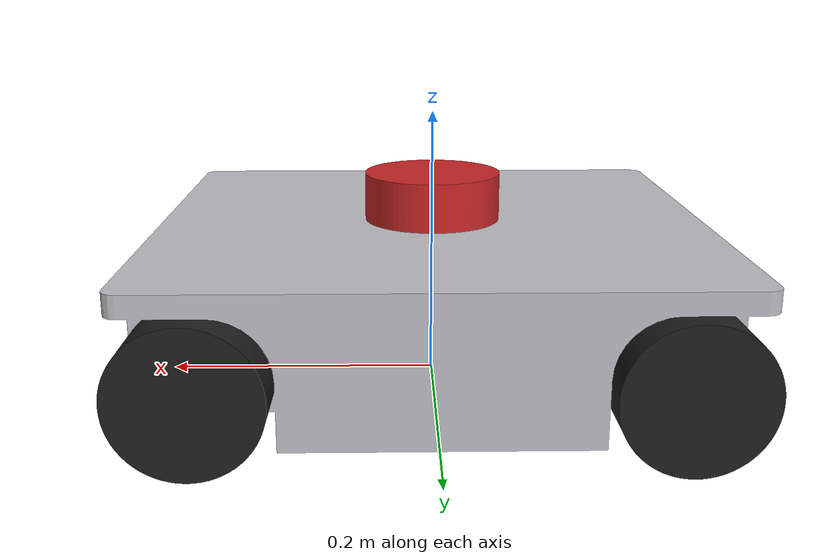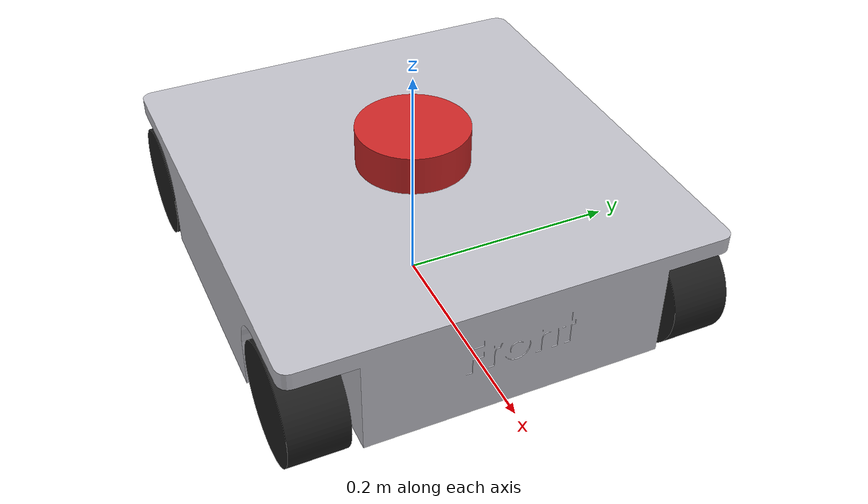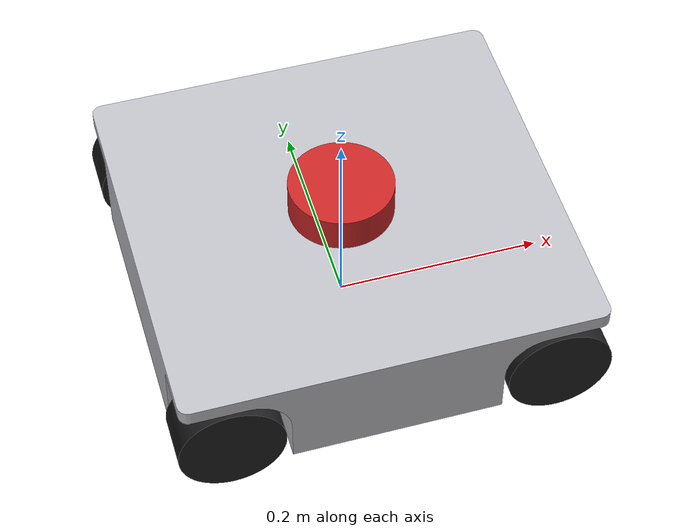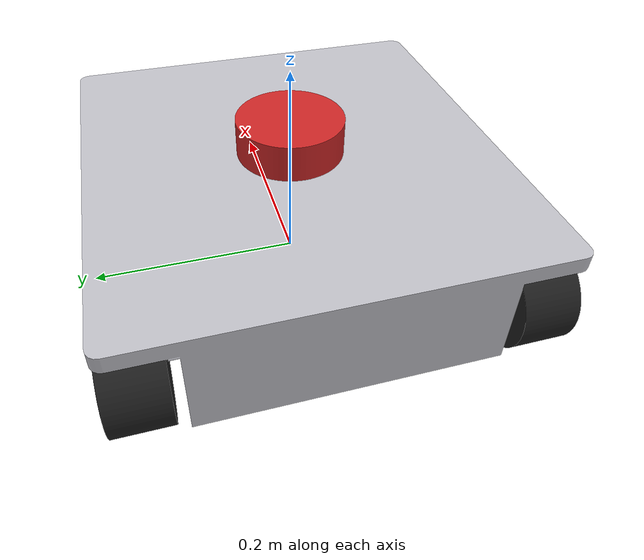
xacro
<?xml version="1.0" ?>
<robot name="robot" xmlns:xacro="http://www.ros.org/wiki/xacro">

<link name="base_footprint">
</link>

<joint name="base_footprint_joint" type="fixed">
  <origin xyz="0.0 0.0 0.0" rpy="0 0 0"/>
  <parent link="base_footprint"/>
  <child link="base_link"/>
</joint>

<link name="base_link">
  <inertial>
    <origin xyz="0 0 0.07117449057392843" rpy="0 0 0"/>
    <mass value="5"/>
    <inertia ixx="1.125875" iyy="1.312695" izz="5" ixy="1e-06" iyz="-0.0" ixz="9e-06"/>
  </inertial>
  <visual>
    <origin xyz="0 0 0" rpy="0 0 0"/>
    <geometry>
   	<mesh filename="file://$(find fontysbot)/description/meshes/base_link.stl" scale="0.001 0.001 0.001"/>
    </geometry>
    <material name="silver"/>
  </visual>
  <collision>
    <origin xyz="0 0 0" rpy="0 0 0"/>
    <geometry>
      <mesh filename="file://$(find fontysbot)/description/meshes/base_link.stl" scale="0.001 0.001 0.001"/>
    </geometry>
  </collision>
</link>

<joint name="front_right_joint" type="fixed">
  <origin xyz="0.155 -0.14 0.05" rpy="0 0 0"/>
  <parent link="base_link"/>
  <child link="front_right_1"/>
  <axis xyz="0.0 1.0 -0.0"/>
</joint>

<link name="front_right_1">
  <inertial>
    <origin xyz="-2.7755575615628914e-17 -0.024999999999999994 6.245004513516506e-17" rpy="0 0 0"/>
    <mass value="1"/>
    <inertia ixx="0.1" iyy="0.1" izz="1" ixy="0.0" iyz="0.0" ixz="0.0"/>
  </inertial>

  <visual>
    <origin xyz="-0.155 0.14 -0.05" rpy="0 0 0"/>
    <geometry>
      <mesh filename="file://$(find fontysbot)/description/meshes/front_right_1.stl" scale="0.001 0.001 0.001"/>
    </geometry>
    <material name="black"/>
  </visual>
  <collision>
  <surface>
        <friction>
          <ode>
            <mu>0</mu>
            <mu2>0</mu2>
          </ode>
        </friction>
  </surface>
    <origin xyz="-0.155 0.14 -0.05" rpy="0 0 0"/>
    <geometry>
      <mesh filename="file://$(find fontysbot)/description/meshes/front_right_1.stl" scale="0.001 0.001 0.001"/>
    </geometry>
  </collision>
</link>

<joint name="rear_right_joint" type="fixed">
  <origin xyz="-0.155 -0.14 0.05" rpy="0 0 0"/>
  <parent link="base_link"/>
  <child link="rear_right_1"/>
  <axis xyz="-0.0 -1.0 0.0"/>
</joint>

<link name="rear_right_1">
  <inertial>
    <origin xyz="2.7755575615628914e-17 -0.025000000000000022 7.632783294297951e-17" rpy="0 0 0"/>
    <mass value="1"/>
    <inertia ixx="0.1" iyy="0.1" izz="1" ixy="0.0" iyz="0.0" ixz="0.0"/>
  </inertial>

  <visual>
    <origin xyz="0.155 0.14 -0.05" rpy="0 0 0"/>
    <geometry>
      <mesh filename="file://$(find fontysbot)/description/meshes/rear_right_1.stl" scale="0.001 0.001 0.001"/>
    </geometry>
    <material name="black"/>
  </visual>
  <collision>
  <surface>
        <friction>
          <ode>
           <mu>0</mu>
            <mu2>0</mu2>
          </ode>
        </friction>
  </surface>
    <origin xyz="0.155 0.14 -0.05" rpy="0 0 0"/>
    <geometry>
      <mesh filename="file://$(find fontysbot)/description/meshes/rear_right_1.stl" scale="0.001 0.001 0.001"/>
    </geometry>
  </collision>
</link>

<joint name="rear_left_joint" type="fixed">
  <origin xyz="-0.155 0.14 0.05" rpy="0 0 0"/>
  <parent link="base_link"/>
  <child link="rear_left_1"/>
  <axis xyz="-0.0 -1.0 0.0"/>
</joint>

<link name="rear_left_1">
  <inertial>
    <origin xyz="-1.6653345369377348e-16 0.02500000000000005 -1.3877787807814457e-17" rpy="0 0 0"/>
    <mass value="1"/>
    <inertia ixx="0.1" iyy="0.1" izz="1" ixy="0.0" iyz="0.0" ixz="0.0"/>
  </inertial>

  <visual>
    <origin xyz="0.155 -0.14 -0.05" rpy="0 0 0"/>
    <geometry>
      <mesh filename="file://$(find fontysbot)/description/meshes/rear_left_1.stl" scale="0.001 0.001 0.001"/>
    </geometry>
    <material name="black"/>
  </visual>
  <collision>
  <surface>
        <friction>
          <ode>
            <mu>0</mu>
            <mu2>0</mu2>
          </ode>
        </friction>
  </surface>
    <origin xyz="0.155 -0.14 -0.05" rpy="0 0 0"/>
    <geometry>
      <mesh filename="file://$(find fontysbot)/description/meshes/rear_left_1.stl" scale="0.001 0.001 0.001"/>
    </geometry>
  </collision>
</link>

<joint name="front_left_joint" type="fixed">
  <origin xyz="0.155 0.14 0.05" rpy="0 0 0"/>
  <parent link="base_link"/>
  <child link="front_left_1"/>
  <axis xyz="0.0 1.0 -0.0"/>
</joint>

<link name="front_left_1">
  <inertial>
    <origin xyz="-2.7755575615628914e-17 0.025000000000000105 -1.3877787807814457e-17" rpy="0 0 0"/>
    <mass value="1"/>
   <inertia ixx="0.1" iyy="0.1" izz="1" ixy="0.0" iyz="0.0" ixz="0.0"/>
  </inertial>

  <visual>
    <origin xyz="-0.155 -0.14 -0.05" rpy="0 0 0"/>
    <geometry>
      <mesh filename="file://$(find fontysbot)/description/meshes/front_left_1.stl" scale="0.001 0.001 0.001"/>
    </geometry>
    <material name="black"/>
  </visual>
  <collision>
  <surface>
        <friction>
          <ode>
            <mu>0</mu>
            <mu2>0</mu2>
          </ode>
        </friction>
  </surface>
    <origin xyz="-0.155 -0.14 -0.05" rpy="0 0 0"/>
    <geometry>
      <mesh filename="file://$(find fontysbot)/description/meshes/front_left_1.stl" scale="0.001 0.001 0.001"/>
    </geometry>
  </collision>
</link>

<joint name="laser_joint" type="fixed">
  <origin xyz="0.0 0.0 0.115" rpy="0 0 3.14"/>
  <parent link="base_link"/>
  <child link="laser_frame"/>
</joint>

<link name="laser_frame">
  <inertial>
    <origin xyz="2.584299894243567e-18 7.87836763182081e-17 0.019999999999999865" rpy="0 0 0"/>
    <mass value="1"/>
    <inertia ixx="0.00187" iyy="0.00187" izz="0.003083" ixy="-0.0" iyz="0.0" ixz="0.0"/>
  </inertial>
  <visual>
    <origin xyz="-0.0 -0.0 -0.115" rpy="0 0 0"/>
    <geometry>
      <mesh filename="file://$(find fontysbot)/description/meshes/lidar_link_1.stl" scale="0.001 0.001 0.001"/>
    </geometry>
    <material name="red"/>
  </visual>
  <collision>
    <origin xyz="-0.0 -0.0 -0.115" rpy="0 0 0"/>
    <geometry>
      <mesh filename="file://$(find fontysbot)/description/meshes/lidar_link_1.stl" scale="0.001 0.001 0.001"/>
    </geometry>
  </collision>
</link>

</robot>
